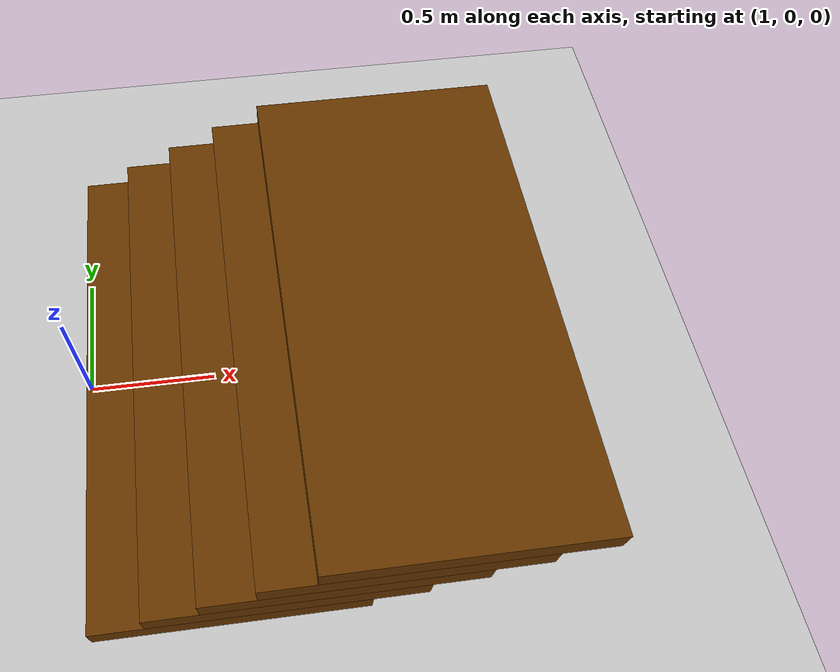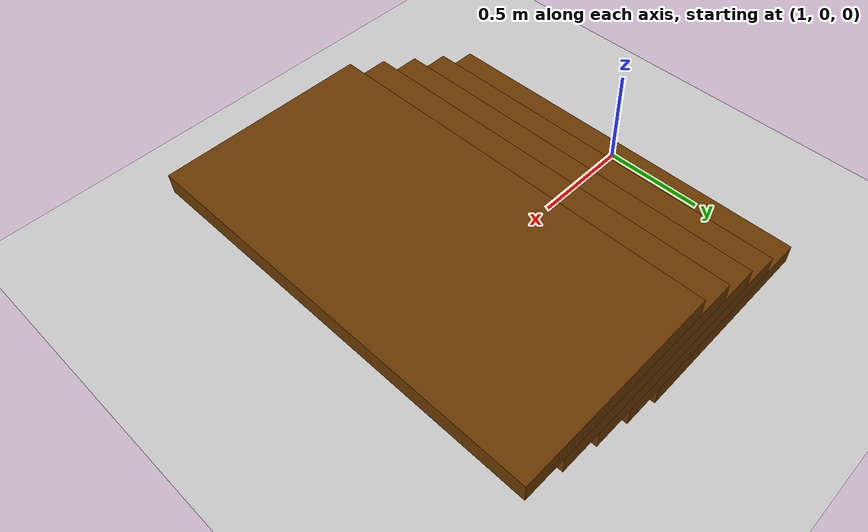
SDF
<?xml version="1.0" ?>
<sdf version="1.5">
    <world name="default">

        <physics type="ode">
            <max_step_size>0.001</max_step_size>
            <real_time_factor>1</real_time_factor>
            <real_time_update_rate>1000</real_time_update_rate>
            <gravity>0 0 -9.81</gravity>
            <ode>
                <solver>
                    <type>quick</type>
                    <iters>50</iters>
                    <sor>1.3</sor>
                </solver>
                <constraints>
                    <cfm>0.0</cfm>
                    <erp>0.2</erp>
                    <contact_max_correcting_vel>10.0</contact_max_correcting_vel>
                    <contact_surface_layer>0.001</contact_surface_layer>
                </constraints>
            </ode>
        </physics>

        <scene>
            <sky>
                <clouds>
                    <speed>12</speed>
                </clouds>
            </sky>
        </scene>
        <!-- A global light source -->
        <include>
            <uri>model://sun</uri>
        </include>
        <!-- A ground plane -->
        <include>
            <uri>model://ground_plane</uri>
        </include>

        <!-- environment blocks, obstacles or stairs -->
        <model name="static_environment">
            <static>true</static>

            <link name="static_box1">
                <pose>1.5 0 0.05 0 0 0</pose>
                <collision name="static_box_collision">
                    <geometry>
                        <box>
                            <size>1 2 0.1</size>
                        </box>
                    </geometry>
                </collision>
                <visual name="static_box_visual">
                    <geometry>
                        <box>
                            <size>1 2 0.1</size>
                        </box>
                    </geometry>
                    <material>
                        <ambient>0.2 0.2 0.2 1.0</ambient>
                        <diffuse>.421 0.225 0.0 1.0</diffuse>
                    </material>
                </visual>
            </link>
            <link name="static_box2">
                <pose>1.7 0 0.15 0 0 0</pose>
                <collision name="static_box_collision">
                    <geometry>
                        <box>
                            <size>1 2 0.1</size>
                        </box>
                    </geometry>
                </collision>
                <visual name="static_box_visual">
                    <geometry>
                        <box>
                            <size>1 2 0.1</size>
                        </box>
                    </geometry>
                    <material>
                        <ambient>0.2 0.2 0.2 1.0</ambient>
                        <diffuse>.421 0.225 0.0 1.0</diffuse>
                    </material>
                </visual>
            </link>

            <link name="static_box3">
                <pose>1.9 0 0.25 0 0 0</pose>
                <collision name="static_box_collision">
                    <geometry>
                        <box>
                            <size>1 2 0.1</size>
                        </box>
                    </geometry>
                </collision>
                <visual name="static_box_visual">
                    <geometry>
                        <box>
                            <size>1 2 0.1</size>
                        </box>
                    </geometry>
                    <material>
                        <ambient>0.2 0.2 0.2 1.0</ambient>
                        <diffuse>.421 0.225 0.0 1.0</diffuse>
                    </material>
                </visual>
            </link>
            <link name="static_box4">
                <pose>2.1 0 0.35 0 0 0</pose>
                <collision name="static_box_collision">
                    <geometry>
                        <box>
                            <size>1 2 0.1</size>
                        </box>
                    </geometry>
                </collision>
                <visual name="static_box_visual">
                    <geometry>
                        <box>
                            <size>1 2 0.1</size>
                        </box>
                    </geometry>
                    <material>
                        <ambient>0.2 0.2 0.2 1.0</ambient>
                        <diffuse>.421 0.225 0.0 1.0</diffuse>
                    </material>
                </visual>
            </link>
            <link name="static_box5">
                <pose>2.3 0 0.45 0 0 0</pose>
                <collision name="static_box_collision">
                    <geometry>
                        <box>
                            <size>1 2 0.1</size>
                        </box>
                    </geometry>
                </collision>
                <visual name="static_box_visual">
                    <geometry>
                        <box>
                            <size>1 2 0.1</size>
                        </box>
                    </geometry>
                    <material>
                        <ambient>0.2 0.2 0.2 1.0</ambient>
                        <diffuse>.421 0.225 0.0 1.0</diffuse>
                    </material>
                </visual>
            </link>

        </model>
    </world>
</sdf>
